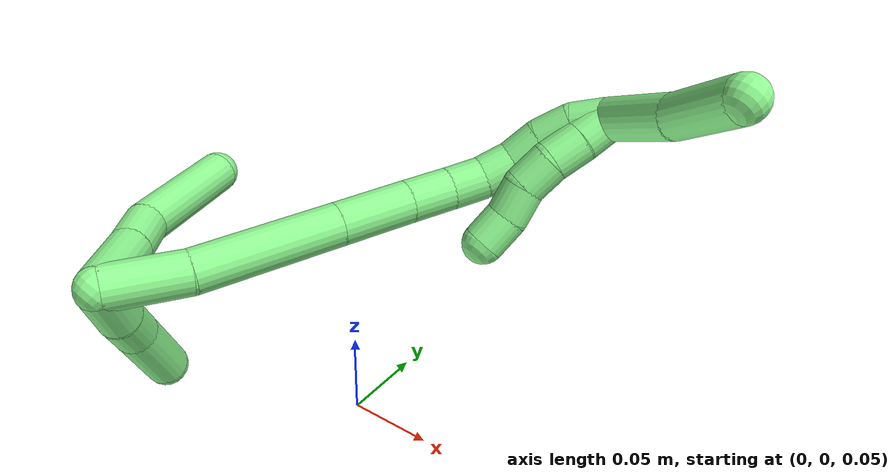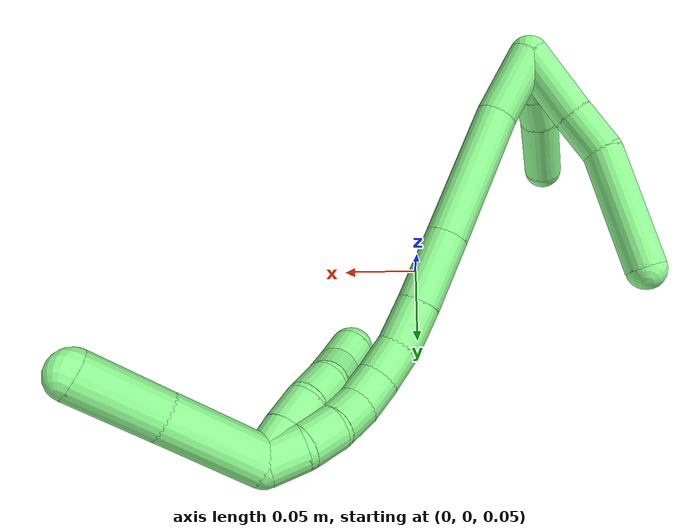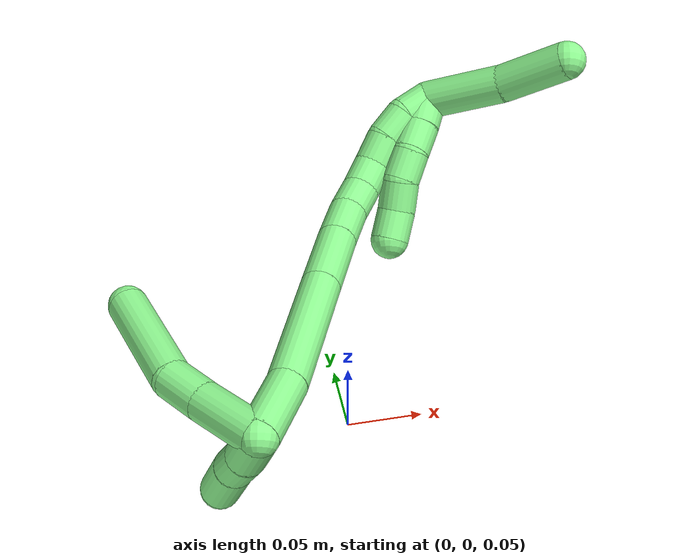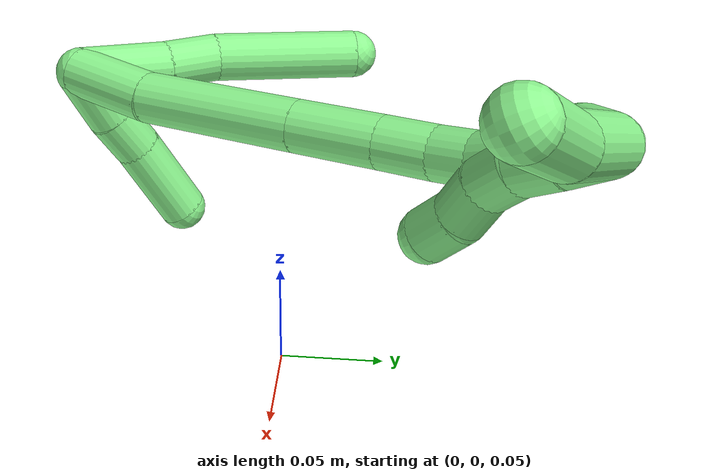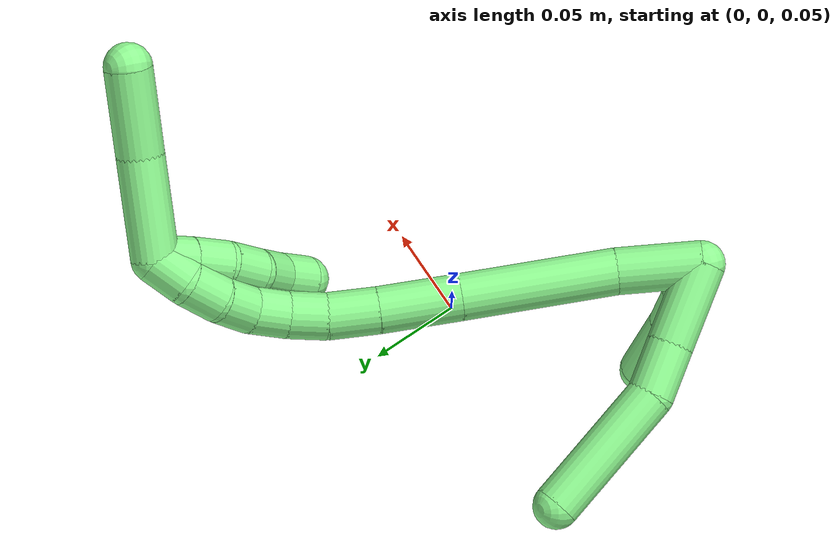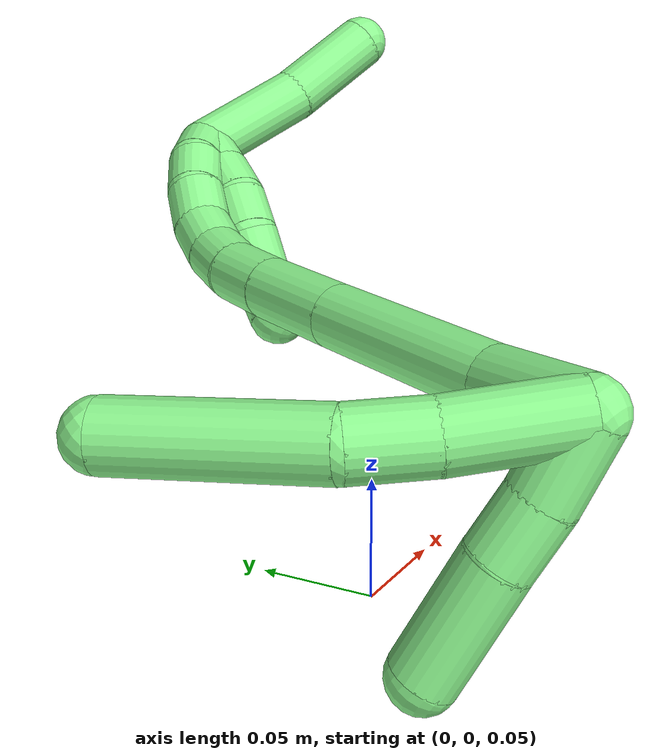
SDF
<sdf version="1.7">
 <world name="default">
  <model name="13">
   <static>0</static>
   <link name="13">
    <collision name="collision-cylinder-e_1_2_8">
     <pose>-0.018907 0.006037 0.011417 -0.486371 -0.971526 0.260485</pose>
     <geometry><cylinder><radius>0.0125</radius><length>0.045794</length></cylinder></geometry>
     <surface>
      <friction><ode><mu>1.16</mu><mu2>1.16</mu2><slip1>0</slip1><slip2>0</slip2></ode></friction>
      <contact><ode><kp>1e+06</kp><kd>1</kd><max_vel>0</max_vel><min_depth>0.001</min_depth></ode></contact>
     </surface>
    </collision>
    <visual name="visual-cylinder-e_1_2_8">
     <pose>-0.018907 0.006037 0.011417 -0.486371 -0.971526 0.260485</pose>
     <geometry><cylinder><radius>0.0125</radius><length>0.045794</length></cylinder></geometry>
     <material><ambient>0.564706 0.984314 0.572549 1</ambient></material>
    </visual>
    <collision name="collision-cylinder-e_2_8_9">
     <pose>-0.049583 0.014972 0.030645 -0.355344 -0.95479 0.185249</pose>
     <geometry><cylinder><radius>0.0125</radius><length>0.028838</length></cylinder></geometry>
     <surface>
      <friction><ode><mu>1.16</mu><mu2>1.16</mu2><slip1>0</slip1><slip2>0</slip2></ode></friction>
      <contact><ode><kp>1e+06</kp><kd>1</kd><max_vel>0</max_vel><min_depth>0.001</min_depth></ode></contact>
     </surface>
    </collision>
    <visual name="visual-cylinder-e_2_8_9">
     <pose>-0.049583 0.014972 0.030645 -0.355344 -0.95479 0.185249</pose>
     <geometry><cylinder><radius>0.0125</radius><length>0.028838</length></cylinder></geometry>
     <material><ambient>0.564706 0.984314 0.572549 1</ambient></material>
    </visual>
    <collision name="collision-cylinder-e_3_9_6">
     <pose>-0.083699 0.032232 0.065184 -0.493062 -0.634811 0.164965</pose>
     <geometry><cylinder><radius>0.0125</radius><length>0.075369</length></cylinder></geometry>
     <surface>
      <friction><ode><mu>1.16</mu><mu2>1.16</mu2><slip1>0</slip1><slip2>0</slip2></ode></friction>
      <contact><ode><kp>1e+06</kp><kd>1</kd><max_vel>0</max_vel><min_depth>0.001</min_depth></ode></contact>
     </surface>
    </collision>
    <visual name="visual-cylinder-e_3_9_6">
     <pose>-0.083699 0.032232 0.065184 -0.493062 -0.634811 0.164965</pose>
     <geometry><cylinder><radius>0.0125</radius><length>0.075369</length></cylinder></geometry>
     <material><ambient>0.564706 0.984314 0.572549 1</ambient></material>
    </visual>
    <collision name="collision-cylinder-e_1_2_10">
     <pose>-0.008111 0.012383 -0.003323 -1.83297 -0.564061 0.72238</pose>
     <geometry><cylinder><radius>0.0125</radius><length>0.030343</length></cylinder></geometry>
     <surface>
      <friction><ode><mu>1.16</mu><mu2>1.16</mu2><slip1>0</slip1><slip2>0</slip2></ode></friction>
      <contact><ode><kp>1e+06</kp><kd>1</kd><max_vel>0</max_vel><min_depth>0.001</min_depth></ode></contact>
     </surface>
    </collision>
    <visual name="visual-cylinder-e_1_2_10">
     <pose>-0.008111 0.012383 -0.003323 -1.83297 -0.564061 0.72238</pose>
     <geometry><cylinder><radius>0.0125</radius><length>0.030343</length></cylinder></geometry>
     <material><ambient>0.564706 0.984314 0.572549 1</ambient></material>
    </visual>
    <collision name="collision-cylinder-e_2_10_11">
     <pose>-0.023311 0.034083 -0.008305 -1.74703 -0.642949 0.756826</pose>
     <geometry><cylinder><radius>0.0125</radius><length>0.023648</length></cylinder></geometry>
     <surface>
      <friction><ode><mu>1.16</mu><mu2>1.16</mu2><slip1>0</slip1><slip2>0</slip2></ode></friction>
      <contact><ode><kp>1e+06</kp><kd>1</kd><max_vel>0</max_vel><min_depth>0.001</min_depth></ode></contact>
     </surface>
    </collision>
    <visual name="visual-cylinder-e_2_10_11">
     <pose>-0.023311 0.034083 -0.008305 -1.74703 -0.642949 0.756826</pose>
     <geometry><cylinder><radius>0.0125</radius><length>0.023648</length></cylinder></geometry>
     <material><ambient>0.564706 0.984314 0.572549 1</ambient></material>
    </visual>
    <collision name="collision-cylinder-e_3_11_5">
     <pose>-0.042259 0.062812 -0.013388 -1.74537 -0.541561 0.639014</pose>
     <geometry><cylinder><radius>0.0125</radius><length>0.046009</length></cylinder></geometry>
     <surface>
      <friction><ode><mu>1.16</mu><mu2>1.16</mu2><slip1>0</slip1><slip2>0</slip2></ode></friction>
      <contact><ode><kp>1e+06</kp><kd>1</kd><max_vel>0</max_vel><min_depth>0.001</min_depth></ode></contact>
     </surface>
    </collision>
    <visual name="visual-cylinder-e_3_11_5">
     <pose>-0.042259 0.062812 -0.013388 -1.74537 -0.541561 0.639014</pose>
     <geometry><cylinder><radius>0.0125</radius><length>0.046009</length></cylinder></geometry>
     <material><ambient>0.564706 0.984314 0.572549 1</ambient></material>
    </visual>
    <collision name="collision-cylinder-e_1_2_12">
     <pose>0.002772 0.014241 0.017284 -0.689157 0.123152 -0.044248</pose>
     <geometry><cylinder><radius>0.0125</radius><length>0.045132</length></cylinder></geometry>
     <surface>
      <friction><ode><mu>1.16</mu><mu2>1.16</mu2><slip1>0</slip1><slip2>0</slip2></ode></friction>
      <contact><ode><kp>1e+06</kp><kd>1</kd><max_vel>0</max_vel><min_depth>0.001</min_depth></ode></contact>
     </surface>
    </collision>
    <visual name="visual-cylinder-e_1_2_12">
     <pose>0.002772 0.014241 0.017284 -0.689157 0.123152 -0.044248</pose>
     <geometry><cylinder><radius>0.0125</radius><length>0.045132</length></cylinder></geometry>
     <material><ambient>0.564706 0.984314 0.572549 1</ambient></material>
    </visual>
    <collision name="collision-cylinder-e_2_12_13">
     <pose>0.007575 0.050855 0.069618 -0.568142 0.048792 -0.014248</pose>
     <geometry><cylinder><radius>0.0125</radius><length>0.083262</length></cylinder></geometry>
     <surface>
      <friction><ode><mu>1.16</mu><mu2>1.16</mu2><slip1>0</slip1><slip2>0</slip2></ode></friction>
      <contact><ode><kp>1e+06</kp><kd>1</kd><max_vel>0</max_vel><min_depth>0.001</min_depth></ode></contact>
     </surface>
    </collision>
    <visual name="visual-cylinder-e_2_12_13">
     <pose>0.007575 0.050855 0.069618 -0.568142 0.048792 -0.014248</pose>
     <geometry><cylinder><radius>0.0125</radius><length>0.083262</length></cylinder></geometry>
     <material><ambient>0.564706 0.984314 0.572549 1</ambient></material>
    </visual>
    <collision name="collision-cylinder-e_3_13_14">
     <pose>0.010809 0.084788 0.122924 -0.564413 0.055664 -0.016143</pose>
     <geometry><cylinder><radius>0.0125</radius><length>0.043285</length></cylinder></geometry>
     <surface>
      <friction><ode><mu>1.16</mu><mu2>1.16</mu2><slip1>0</slip1><slip2>0</slip2></ode></friction>
      <contact><ode><kp>1e+06</kp><kd>1</kd><max_vel>0</max_vel><min_depth>0.001</min_depth></ode></contact>
     </surface>
    </collision>
    <visual name="visual-cylinder-e_3_13_14">
     <pose>0.010809 0.084788 0.122924 -0.564413 0.055664 -0.016143</pose>
     <geometry><cylinder><radius>0.0125</radius><length>0.043285</length></cylinder></geometry>
     <material><ambient>0.564706 0.984314 0.572549 1</ambient></material>
    </visual>
    <collision name="collision-cylinder-e_4_14_15">
     <pose>0.013298 0.103495 0.152601 -0.559262 0.095107 -0.027329</pose>
     <geometry><cylinder><radius>0.0125</radius><length>0.027065</length></cylinder></geometry>
     <surface>
      <friction><ode><mu>1.16</mu><mu2>1.16</mu2><slip1>0</slip1><slip2>0</slip2></ode></friction>
      <contact><ode><kp>1e+06</kp><kd>1</kd><max_vel>0</max_vel><min_depth>0.001</min_depth></ode></contact>
     </surface>
    </collision>
    <visual name="visual-cylinder-e_4_14_15">
     <pose>0.013298 0.103495 0.152601 -0.559262 0.095107 -0.027329</pose>
     <geometry><cylinder><radius>0.0125</radius><length>0.027065</length></cylinder></geometry>
     <material><ambient>0.564706 0.984314 0.572549 1</ambient></material>
    </visual>
    <collision name="collision-cylinder-e_5_15_16">
     <pose>0.017254 0.115373 0.173085 -0.481019 0.255453 -0.062974</pose>
     <geometry><cylinder><radius>0.0125</radius><length>0.021137</length></cylinder></geometry>
     <surface>
      <friction><ode><mu>1.16</mu><mu2>1.16</mu2><slip1>0</slip1><slip2>0</slip2></ode></friction>
      <contact><ode><kp>1e+06</kp><kd>1</kd><max_vel>0</max_vel><min_depth>0.001</min_depth></ode></contact>
     </surface>
    </collision>
    <visual name="visual-cylinder-e_5_15_16">
     <pose>0.017254 0.115373 0.173085 -0.481019 0.255453 -0.062974</pose>
     <geometry><cylinder><radius>0.0125</radius><length>0.021137</length></cylinder></geometry>
     <material><ambient>0.564706 0.984314 0.572549 1</ambient></material>
    </visual>
    <collision name="collision-cylinder-e_6_16_17">
     <pose>0.023252 0.122489 0.1913 -0.25494 0.338368 -0.043778</pose>
     <geometry><cylinder><radius>0.0125</radius><length>0.020047</length></cylinder></geometry>
     <surface>
      <friction><ode><mu>1.16</mu><mu2>1.16</mu2><slip1>0</slip1><slip2>0</slip2></ode></friction>
      <contact><ode><kp>1e+06</kp><kd>1</kd><max_vel>0</max_vel><min_depth>0.001</min_depth></ode></contact>
     </surface>
    </collision>
    <visual name="visual-cylinder-e_6_16_17">
     <pose>0.023252 0.122489 0.1913 -0.25494 0.338368 -0.043778</pose>
     <geometry><cylinder><radius>0.0125</radius><length>0.020047</length></cylinder></geometry>
     <material><ambient>0.564706 0.984314 0.572549 1</ambient></material>
    </visual>
    <collision name="collision-cylinder-e_7_17_18">
     <pose>0.031081 0.124256 0.20936 0.069208 0.46685 0.016461</pose>
     <geometry><cylinder><radius>0.0125</radius><length>0.020004</length></cylinder></geometry>
     <surface>
      <friction><ode><mu>1.16</mu><mu2>1.16</mu2><slip1>0</slip1><slip2>0</slip2></ode></friction>
      <contact><ode><kp>1e+06</kp><kd>1</kd><max_vel>0</max_vel><min_depth>0.001</min_depth></ode></contact>
     </surface>
    </collision>
    <visual name="visual-cylinder-e_7_17_18">
     <pose>0.031081 0.124256 0.20936 0.069208 0.46685 0.016461</pose>
     <geometry><cylinder><radius>0.0125</radius><length>0.020004</length></cylinder></geometry>
     <material><ambient>0.564706 0.984314 0.572549 1</ambient></material>
    </visual>
    <collision name="collision-cylinder-e_8_18_19">
     <pose>0.041642 0.124458 0.226189 -0.103116 0.650602 -0.034806</pose>
     <geometry><cylinder><radius>0.0125</radius><length>0.02001</length></cylinder></geometry>
     <surface>
      <friction><ode><mu>1.16</mu><mu2>1.16</mu2><slip1>0</slip1><slip2>0</slip2></ode></friction>
      <contact><ode><kp>1e+06</kp><kd>1</kd><max_vel>0</max_vel><min_depth>0.001</min_depth></ode></contact>
     </surface>
    </collision>
    <visual name="visual-cylinder-e_8_18_19">
     <pose>0.041642 0.124458 0.226189 -0.103116 0.650602 -0.034806</pose>
     <geometry><cylinder><radius>0.0125</radius><length>0.02001</length></cylinder></geometry>
     <material><ambient>0.564706 0.984314 0.572549 1</ambient></material>
    </visual>
    <collision name="collision-cylinder-e_9_19_1">
     <pose>0.055117 0.128301 0.240144 -0.464484 0.832253 -0.208287</pose>
     <geometry><cylinder><radius>0.0125</radius><length>0.020057</length></cylinder></geometry>
     <surface>
      <friction><ode><mu>1.16</mu><mu2>1.16</mu2><slip1>0</slip1><slip2>0</slip2></ode></friction>
      <contact><ode><kp>1e+06</kp><kd>1</kd><max_vel>0</max_vel><min_depth>0.001</min_depth></ode></contact>
     </surface>
    </collision>
    <visual name="visual-cylinder-e_9_19_1">
     <pose>0.055117 0.128301 0.240144 -0.464484 0.832253 -0.208287</pose>
     <geometry><cylinder><radius>0.0125</radius><length>0.020057</length></cylinder></geometry>
     <material><ambient>0.564706 0.984314 0.572549 1</ambient></material>
    </visual>
    <collision name="collision-cylinder-e_1_1_20">
     <pose>0.060224 0.130247 0.23651 3.03049 -0.23299 -2.2544</pose>
     <geometry><cylinder><radius>0.0125</radius><length>0.02</length></cylinder></geometry>
     <surface>
      <friction><ode><mu>1.16</mu><mu2>1.16</mu2><slip1>0</slip1><slip2>0</slip2></ode></friction>
      <contact><ode><kp>1e+06</kp><kd>1</kd><max_vel>0</max_vel><min_depth>0.001</min_depth></ode></contact>
     </surface>
    </collision>
    <visual name="visual-cylinder-e_1_1_20">
     <pose>0.060224 0.130247 0.23651 3.03049 -0.23299 -2.2544</pose>
     <geometry><cylinder><radius>0.0125</radius><length>0.02</length></cylinder></geometry>
     <material><ambient>0.564706 0.984314 0.572549 1</ambient></material>
    </visual>
    <collision name="collision-cylinder-e_2_20_21">
     <pose>0.054981 0.127811 0.217377 2.99917 -0.297833 -2.25394</pose>
     <geometry><cylinder><radius>0.0125</radius><length>0.02</length></cylinder></geometry>
     <surface>
      <friction><ode><mu>1.16</mu><mu2>1.16</mu2><slip1>0</slip1><slip2>0</slip2></ode></friction>
      <contact><ode><kp>1e+06</kp><kd>1</kd><max_vel>0</max_vel><min_depth>0.001</min_depth></ode></contact>
     </surface>
    </collision>
    <visual name="visual-cylinder-e_2_20_21">
     <pose>0.054981 0.127811 0.217377 2.99917 -0.297833 -2.25394</pose>
     <geometry><cylinder><radius>0.0125</radius><length>0.02</length></cylinder></geometry>
     <material><ambient>0.564706 0.984314 0.572549 1</ambient></material>
    </visual>
    <collision name="collision-cylinder-e_3_21_22">
     <pose>0.048459 0.127489 0.198638 -3.03052 -0.366889 2.55931</pose>
     <geometry><cylinder><radius>0.0125</radius><length>0.02</length></cylinder></geometry>
     <surface>
      <friction><ode><mu>1.16</mu><mu2>1.16</mu2><slip1>0</slip1><slip2>0</slip2></ode></friction>
      <contact><ode><kp>1e+06</kp><kd>1</kd><max_vel>0</max_vel><min_depth>0.001</min_depth></ode></contact>
     </surface>
    </collision>
    <visual name="visual-cylinder-e_3_21_22">
     <pose>0.048459 0.127489 0.198638 -3.03052 -0.366889 2.55931</pose>
     <geometry><cylinder><radius>0.0125</radius><length>0.02</length></cylinder></geometry>
     <material><ambient>0.564706 0.984314 0.572549 1</ambient></material>
    </visual>
    <collision name="collision-cylinder-e_4_22_23">
     <pose>0.042526 0.132499 0.18049 -2.72032 -0.236792 1.01541</pose>
     <geometry><cylinder><radius>0.0125</radius><length>0.02</length></cylinder></geometry>
     <surface>
      <friction><ode><mu>1.16</mu><mu2>1.16</mu2><slip1>0</slip1><slip2>0</slip2></ode></friction>
      <contact><ode><kp>1e+06</kp><kd>1</kd><max_vel>0</max_vel><min_depth>0.001</min_depth></ode></contact>
     </surface>
    </collision>
    <visual name="visual-cylinder-e_4_22_23">
     <pose>0.042526 0.132499 0.18049 -2.72032 -0.236792 1.01541</pose>
     <geometry><cylinder><radius>0.0125</radius><length>0.02</length></cylinder></geometry>
     <material><ambient>0.564706 0.984314 0.572549 1</ambient></material>
    </visual>
    <collision name="collision-cylinder-e_5_23_4">
     <pose>0.037577 0.137829 0.162059 -3.00075 -0.263343 2.16282</pose>
     <geometry><cylinder><radius>0.0125</radius><length>0.02</length></cylinder></geometry>
     <surface>
      <friction><ode><mu>1.16</mu><mu2>1.16</mu2><slip1>0</slip1><slip2>0</slip2></ode></friction>
      <contact><ode><kp>1e+06</kp><kd>1</kd><max_vel>0</max_vel><min_depth>0.001</min_depth></ode></contact>
     </surface>
    </collision>
    <visual name="visual-cylinder-e_5_23_4">
     <pose>0.037577 0.137829 0.162059 -3.00075 -0.263343 2.16282</pose>
     <geometry><cylinder><radius>0.0125</radius><length>0.02</length></cylinder></geometry>
     <material><ambient>0.564706 0.984314 0.572549 1</ambient></material>
    </visual>
    <collision name="collision-cylinder-e_1_1_24">
     <pose>0.088929 0.126252 0.247096 1.3921 1.3779 1.20546</pose>
     <geometry><cylinder><radius>0.0125</radius><length>0.053789</length></cylinder></geometry>
     <surface>
      <friction><ode><mu>1.16</mu><mu2>1.16</mu2><slip1>0</slip1><slip2>0</slip2></ode></friction>
      <contact><ode><kp>1e+06</kp><kd>1</kd><max_vel>0</max_vel><min_depth>0.001</min_depth></ode></contact>
     </surface>
    </collision>
    <visual name="visual-cylinder-e_1_1_24">
     <pose>0.088929 0.126252 0.247096 1.3921 1.3779 1.20546</pose>
     <geometry><cylinder><radius>0.0125</radius><length>0.053789</length></cylinder></geometry>
     <material><ambient>0.564706 0.984314 0.572549 1</ambient></material>
    </visual>
    <collision name="collision-cylinder-e_2_24_3">
     <pose>0.137176 0.1141 0.250513 1.23126 1.23985 0.935107</pose>
     <geometry><cylinder><radius>0.0125</radius><length>0.046211</length></cylinder></geometry>
     <surface>
      <friction><ode><mu>1.16</mu><mu2>1.16</mu2><slip1>0</slip1><slip2>0</slip2></ode></friction>
      <contact><ode><kp>1e+06</kp><kd>1</kd><max_vel>0</max_vel><min_depth>0.001</min_depth></ode></contact>
     </surface>
    </collision>
    <visual name="visual-cylinder-e_2_24_3">
     <pose>0.137176 0.1141 0.250513 1.23126 1.23985 0.935107</pose>
     <geometry><cylinder><radius>0.0125</radius><length>0.046211</length></cylinder></geometry>
     <material><ambient>0.564706 0.984314 0.572549 1</ambient></material>
    </visual>
    <collision name="collision-sphere-3">
     <pose>0.159028 0.10702 0.253014 0 -0 0</pose>
     <geometry><sphere><radius>0.0125</radius></sphere></geometry>
     <surface>
      <friction><ode><mu>1.16</mu><mu2>1.16</mu2><slip1>0</slip1><slip2>0</slip2></ode></friction>
      <contact><ode><kp>1e+06</kp><kd>1</kd><max_vel>0</max_vel><min_depth>0.001</min_depth></ode></contact>
     </surface>
    </collision>
    <visual name="visual-sphere-3">
     <pose>0.159028 0.10702 0.253014 0 -0 0</pose>
     <geometry><sphere><radius>0.0125</radius></sphere></geometry>
     <material><ambient>0.564706 0.984314 0.572549 1</ambient></material>
    </visual>
    <collision name="collision-sphere-24">
     <pose>0.115324 0.121179 0.248013 0 -0 0</pose>
     <geometry><sphere><radius>0.0125</radius></sphere></geometry>
     <surface>
      <friction><ode><mu>1.16</mu><mu2>1.16</mu2><slip1>0</slip1><slip2>0</slip2></ode></friction>
      <contact><ode><kp>1e+06</kp><kd>1</kd><max_vel>0</max_vel><min_depth>0.001</min_depth></ode></contact>
     </surface>
    </collision>
    <visual name="visual-sphere-24">
     <pose>0.115324 0.121179 0.248013 0 -0 0</pose>
     <geometry><sphere><radius>0.0125</radius></sphere></geometry>
     <material><ambient>0.564706 0.984314 0.572549 1</ambient></material>
    </visual>
    <collision name="collision-sphere-4">
     <pose>0.034974 0.139185 0.152499 0 -0 0</pose>
     <geometry><sphere><radius>0.0125</radius></sphere></geometry>
     <surface>
      <friction><ode><mu>1.16</mu><mu2>1.16</mu2><slip1>0</slip1><slip2>0</slip2></ode></friction>
      <contact><ode><kp>1e+06</kp><kd>1</kd><max_vel>0</max_vel><min_depth>0.001</min_depth></ode></contact>
     </surface>
    </collision>
    <visual name="visual-sphere-4">
     <pose>0.034974 0.139185 0.152499 0 -0 0</pose>
     <geometry><sphere><radius>0.0125</radius></sphere></geometry>
     <material><ambient>0.564706 0.984314 0.572549 1</ambient></material>
    </visual>
    <collision name="collision-sphere-23">
     <pose>0.04018 0.136474 0.171618 0 -0 0</pose>
     <geometry><sphere><radius>0.0125</radius></sphere></geometry>
     <surface>
      <friction><ode><mu>1.16</mu><mu2>1.16</mu2><slip1>0</slip1><slip2>0</slip2></ode></friction>
      <contact><ode><kp>1e+06</kp><kd>1</kd><max_vel>0</max_vel><min_depth>0.001</min_depth></ode></contact>
     </surface>
    </collision>
    <visual name="visual-sphere-23">
     <pose>0.04018 0.136474 0.171618 0 -0 0</pose>
     <geometry><sphere><radius>0.0125</radius></sphere></geometry>
     <material><ambient>0.564706 0.984314 0.572549 1</ambient></material>
    </visual>
    <collision name="collision-sphere-22">
     <pose>0.044872 0.128524 0.189361 0 -0 0</pose>
     <geometry><sphere><radius>0.0125</radius></sphere></geometry>
     <surface>
      <friction><ode><mu>1.16</mu><mu2>1.16</mu2><slip1>0</slip1><slip2>0</slip2></ode></friction>
      <contact><ode><kp>1e+06</kp><kd>1</kd><max_vel>0</max_vel><min_depth>0.001</min_depth></ode></contact>
     </surface>
    </collision>
    <visual name="visual-sphere-22">
     <pose>0.044872 0.128524 0.189361 0 -0 0</pose>
     <geometry><sphere><radius>0.0125</radius></sphere></geometry>
     <material><ambient>0.564706 0.984314 0.572549 1</ambient></material>
    </visual>
    <collision name="collision-sphere-21">
     <pose>0.052046 0.126454 0.207914 0 -0 0</pose>
     <geometry><sphere><radius>0.0125</radius></sphere></geometry>
     <surface>
      <friction><ode><mu>1.16</mu><mu2>1.16</mu2><slip1>0</slip1><slip2>0</slip2></ode></friction>
      <contact><ode><kp>1e+06</kp><kd>1</kd><max_vel>0</max_vel><min_depth>0.001</min_depth></ode></contact>
     </surface>
    </collision>
    <visual name="visual-sphere-21">
     <pose>0.052046 0.126454 0.207914 0 -0 0</pose>
     <geometry><sphere><radius>0.0125</radius></sphere></geometry>
     <material><ambient>0.564706 0.984314 0.572549 1</ambient></material>
    </visual>
    <collision name="collision-sphere-20">
     <pose>0.057915 0.129168 0.22684 0 -0 0</pose>
     <geometry><sphere><radius>0.0125</radius></sphere></geometry>
     <surface>
      <friction><ode><mu>1.16</mu><mu2>1.16</mu2><slip1>0</slip1><slip2>0</slip2></ode></friction>
      <contact><ode><kp>1e+06</kp><kd>1</kd><max_vel>0</max_vel><min_depth>0.001</min_depth></ode></contact>
     </surface>
    </collision>
    <visual name="visual-sphere-20">
     <pose>0.057915 0.129168 0.22684 0 -0 0</pose>
     <geometry><sphere><radius>0.0125</radius></sphere></geometry>
     <material><ambient>0.564706 0.984314 0.572549 1</ambient></material>
    </visual>
    <collision name="collision-sphere-11">
     <pose>-0.0304 0.043399 -0.009964 0 -0 0</pose>
     <geometry><sphere><radius>0.0125</radius></sphere></geometry>
     <surface>
      <friction><ode><mu>1.16</mu><mu2>1.16</mu2><slip1>0</slip1><slip2>0</slip2></ode></friction>
      <contact><ode><kp>1e+06</kp><kd>1</kd><max_vel>0</max_vel><min_depth>0.001</min_depth></ode></contact>
     </surface>
    </collision>
    <visual name="visual-sphere-11">
     <pose>-0.0304 0.043399 -0.009964 0 -0 0</pose>
     <geometry><sphere><radius>0.0125</radius></sphere></geometry>
     <material><ambient>0.564706 0.984314 0.572549 1</ambient></material>
    </visual>
    <collision name="collision-sphere-10">
     <pose>-0.016222 0.024766 -0.006646 0 -0 0</pose>
     <geometry><sphere><radius>0.0125</radius></sphere></geometry>
     <surface>
      <friction><ode><mu>1.16</mu><mu2>1.16</mu2><slip1>0</slip1><slip2>0</slip2></ode></friction>
      <contact><ode><kp>1e+06</kp><kd>1</kd><max_vel>0</max_vel><min_depth>0.001</min_depth></ode></contact>
     </surface>
    </collision>
    <visual name="visual-sphere-10">
     <pose>-0.016222 0.024766 -0.006646 0 -0 0</pose>
     <geometry><sphere><radius>0.0125</radius></sphere></geometry>
     <material><ambient>0.564706 0.984314 0.572549 1</ambient></material>
    </visual>
    <collision name="collision-sphere-6">
     <pose>-0.106047 0.046594 0.091912 0 -0 0</pose>
     <geometry><sphere><radius>0.0125</radius></sphere></geometry>
     <surface>
      <friction><ode><mu>1.16</mu><mu2>1.16</mu2><slip1>0</slip1><slip2>0</slip2></ode></friction>
      <contact><ode><kp>1e+06</kp><kd>1</kd><max_vel>0</max_vel><min_depth>0.001</min_depth></ode></contact>
     </surface>
    </collision>
    <visual name="visual-sphere-6">
     <pose>-0.106047 0.046594 0.091912 0 -0 0</pose>
     <geometry><sphere><radius>0.0125</radius></sphere></geometry>
     <material><ambient>0.564706 0.984314 0.572549 1</ambient></material>
    </visual>
    <collision name="collision-sphere-9">
     <pose>-0.061351 0.01787 0.038455 0 -0 0</pose>
     <geometry><sphere><radius>0.0125</radius></sphere></geometry>
     <surface>
      <friction><ode><mu>1.16</mu><mu2>1.16</mu2><slip1>0</slip1><slip2>0</slip2></ode></friction>
      <contact><ode><kp>1e+06</kp><kd>1</kd><max_vel>0</max_vel><min_depth>0.001</min_depth></ode></contact>
     </surface>
    </collision>
    <visual name="visual-sphere-9">
     <pose>-0.061351 0.01787 0.038455 0 -0 0</pose>
     <geometry><sphere><radius>0.0125</radius></sphere></geometry>
     <material><ambient>0.564706 0.984314 0.572549 1</ambient></material>
    </visual>
    <collision name="collision-sphere-2">
     <geometry><sphere><radius>0.0125</radius></sphere></geometry>
     <surface>
      <friction><ode><mu>1.16</mu><mu2>1.16</mu2><slip1>0</slip1><slip2>0</slip2></ode></friction>
      <contact><ode><kp>1e+06</kp><kd>1</kd><max_vel>0</max_vel><min_depth>0.001</min_depth></ode></contact>
     </surface>
    </collision>
    <visual name="visual-sphere-2">
     <geometry><sphere><radius>0.0125</radius></sphere></geometry>
     <material><ambient>0.564706 0.984314 0.572549 1</ambient></material>
    </visual>
    <collision name="collision-sphere-19">
     <pose>0.047702 0.125277 0.234108 0 -0 0</pose>
     <geometry><sphere><radius>0.0125</radius></sphere></geometry>
     <surface>
      <friction><ode><mu>1.16</mu><mu2>1.16</mu2><slip1>0</slip1><slip2>0</slip2></ode></friction>
      <contact><ode><kp>1e+06</kp><kd>1</kd><max_vel>0</max_vel><min_depth>0.001</min_depth></ode></contact>
     </surface>
    </collision>
    <visual name="visual-sphere-19">
     <pose>0.047702 0.125277 0.234108 0 -0 0</pose>
     <geometry><sphere><radius>0.0125</radius></sphere></geometry>
     <material><ambient>0.564706 0.984314 0.572549 1</ambient></material>
    </visual>
    <collision name="collision-sphere-8">
     <pose>-0.037814 0.012073 0.022834 0 -0 0</pose>
     <geometry><sphere><radius>0.0125</radius></sphere></geometry>
     <surface>
      <friction><ode><mu>1.16</mu><mu2>1.16</mu2><slip1>0</slip1><slip2>0</slip2></ode></friction>
      <contact><ode><kp>1e+06</kp><kd>1</kd><max_vel>0</max_vel><min_depth>0.001</min_depth></ode></contact>
     </surface>
    </collision>
    <visual name="visual-sphere-8">
     <pose>-0.037814 0.012073 0.022834 0 -0 0</pose>
     <geometry><sphere><radius>0.0125</radius></sphere></geometry>
     <material><ambient>0.564706 0.984314 0.572549 1</ambient></material>
    </visual>
    <collision name="collision-sphere-5">
     <pose>-0.054117 0.082226 -0.016812 0 -0 0</pose>
     <geometry><sphere><radius>0.0125</radius></sphere></geometry>
     <surface>
      <friction><ode><mu>1.16</mu><mu2>1.16</mu2><slip1>0</slip1><slip2>0</slip2></ode></friction>
      <contact><ode><kp>1e+06</kp><kd>1</kd><max_vel>0</max_vel><min_depth>0.001</min_depth></ode></contact>
     </surface>
    </collision>
    <visual name="visual-sphere-5">
     <pose>-0.054117 0.082226 -0.016812 0 -0 0</pose>
     <geometry><sphere><radius>0.0125</radius></sphere></geometry>
     <material><ambient>0.564706 0.984314 0.572549 1</ambient></material>
    </visual>
    <collision name="collision-sphere-12">
     <pose>0.005544 0.028482 0.034569 0 -0 0</pose>
     <geometry><sphere><radius>0.0125</radius></sphere></geometry>
     <surface>
      <friction><ode><mu>1.16</mu><mu2>1.16</mu2><slip1>0</slip1><slip2>0</slip2></ode></friction>
      <contact><ode><kp>1e+06</kp><kd>1</kd><max_vel>0</max_vel><min_depth>0.001</min_depth></ode></contact>
     </surface>
    </collision>
    <visual name="visual-sphere-12">
     <pose>0.005544 0.028482 0.034569 0 -0 0</pose>
     <geometry><sphere><radius>0.0125</radius></sphere></geometry>
     <material><ambient>0.564706 0.984314 0.572549 1</ambient></material>
    </visual>
    <collision name="collision-sphere-13">
     <pose>0.009605 0.073229 0.104667 0 -0 0</pose>
     <geometry><sphere><radius>0.0125</radius></sphere></geometry>
     <surface>
      <friction><ode><mu>1.16</mu><mu2>1.16</mu2><slip1>0</slip1><slip2>0</slip2></ode></friction>
      <contact><ode><kp>1e+06</kp><kd>1</kd><max_vel>0</max_vel><min_depth>0.001</min_depth></ode></contact>
     </surface>
    </collision>
    <visual name="visual-sphere-13">
     <pose>0.009605 0.073229 0.104667 0 -0 0</pose>
     <geometry><sphere><radius>0.0125</radius></sphere></geometry>
     <material><ambient>0.564706 0.984314 0.572549 1</ambient></material>
    </visual>
    <collision name="collision-sphere-14">
     <pose>0.012013 0.096347 0.141182 0 -0 0</pose>
     <geometry><sphere><radius>0.0125</radius></sphere></geometry>
     <surface>
      <friction><ode><mu>1.16</mu><mu2>1.16</mu2><slip1>0</slip1><slip2>0</slip2></ode></friction>
      <contact><ode><kp>1e+06</kp><kd>1</kd><max_vel>0</max_vel><min_depth>0.001</min_depth></ode></contact>
     </surface>
    </collision>
    <visual name="visual-sphere-14">
     <pose>0.012013 0.096347 0.141182 0 -0 0</pose>
     <geometry><sphere><radius>0.0125</radius></sphere></geometry>
     <material><ambient>0.564706 0.984314 0.572549 1</ambient></material>
    </visual>
    <collision name="collision-sphere-15">
     <pose>0.014583 0.110642 0.16402 0 -0 0</pose>
     <geometry><sphere><radius>0.0125</radius></sphere></geometry>
     <surface>
      <friction><ode><mu>1.16</mu><mu2>1.16</mu2><slip1>0</slip1><slip2>0</slip2></ode></friction>
      <contact><ode><kp>1e+06</kp><kd>1</kd><max_vel>0</max_vel><min_depth>0.001</min_depth></ode></contact>
     </surface>
    </collision>
    <visual name="visual-sphere-15">
     <pose>0.014583 0.110642 0.16402 0 -0 0</pose>
     <geometry><sphere><radius>0.0125</radius></sphere></geometry>
     <material><ambient>0.564706 0.984314 0.572549 1</ambient></material>
    </visual>
    <collision name="collision-sphere-16">
     <pose>0.019924 0.120104 0.182151 0 -0 0</pose>
     <geometry><sphere><radius>0.0125</radius></sphere></geometry>
     <surface>
      <friction><ode><mu>1.16</mu><mu2>1.16</mu2><slip1>0</slip1><slip2>0</slip2></ode></friction>
      <contact><ode><kp>1e+06</kp><kd>1</kd><max_vel>0</max_vel><min_depth>0.001</min_depth></ode></contact>
     </surface>
    </collision>
    <visual name="visual-sphere-16">
     <pose>0.019924 0.120104 0.182151 0 -0 0</pose>
     <geometry><sphere><radius>0.0125</radius></sphere></geometry>
     <material><ambient>0.564706 0.984314 0.572549 1</ambient></material>
    </visual>
    <collision name="collision-sphere-17">
     <pose>0.026579 0.124873 0.20045 0 -0 0</pose>
     <geometry><sphere><radius>0.0125</radius></sphere></geometry>
     <surface>
      <friction><ode><mu>1.16</mu><mu2>1.16</mu2><slip1>0</slip1><slip2>0</slip2></ode></friction>
      <contact><ode><kp>1e+06</kp><kd>1</kd><max_vel>0</max_vel><min_depth>0.001</min_depth></ode></contact>
     </surface>
    </collision>
    <visual name="visual-sphere-17">
     <pose>0.026579 0.124873 0.20045 0 -0 0</pose>
     <geometry><sphere><radius>0.0125</radius></sphere></geometry>
     <material><ambient>0.564706 0.984314 0.572549 1</ambient></material>
    </visual>
    <collision name="collision-sphere-18">
     <pose>0.035582 0.123638 0.21827 0 -0 0</pose>
     <geometry><sphere><radius>0.0125</radius></sphere></geometry>
     <surface>
      <friction><ode><mu>1.16</mu><mu2>1.16</mu2><slip1>0</slip1><slip2>0</slip2></ode></friction>
      <contact><ode><kp>1e+06</kp><kd>1</kd><max_vel>0</max_vel><min_depth>0.001</min_depth></ode></contact>
     </surface>
    </collision>
    <visual name="visual-sphere-18">
     <pose>0.035582 0.123638 0.21827 0 -0 0</pose>
     <geometry><sphere><radius>0.0125</radius></sphere></geometry>
     <material><ambient>0.564706 0.984314 0.572549 1</ambient></material>
    </visual>
    <collision name="collision-sphere-1">
     <pose>0.062533 0.131326 0.24618 0 -0 0</pose>
     <geometry><sphere><radius>0.0125</radius></sphere></geometry>
     <surface>
      <friction><ode><mu>1.16</mu><mu2>1.16</mu2><slip1>0</slip1><slip2>0</slip2></ode></friction>
      <contact><ode><kp>1e+06</kp><kd>1</kd><max_vel>0</max_vel><min_depth>0.001</min_depth></ode></contact>
     </surface>
    </collision>
    <visual name="visual-sphere-1">
     <pose>0.062533 0.131326 0.24618 0 -0 0</pose>
     <geometry><sphere><radius>0.0125</radius></sphere></geometry>
     <material><ambient>0.564706 0.984314 0.572549 1</ambient></material>
    </visual>
    <inertial>
     <pose>0.012836 0.074909 0.116303 0 -0 0</pose>
     <mass>0.75</mass>
     <inertia>
      <ixx>0.000143</ixx>
      <ixy>0</ixy>
      <ixz>0</ixz>
      <iyy>0.000183</iyy>
      <iyz>0</iyz>
      <izz>-3.7e-05</izz>
     </inertia>
    </inertial>
   </link>
   <pose>-0.071065 -0.108797 0.16658 -0.961723 -0.230377 -0.375151</pose>
  </model>
 </world>
</sdf>
